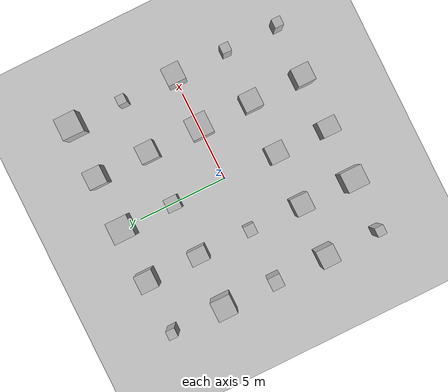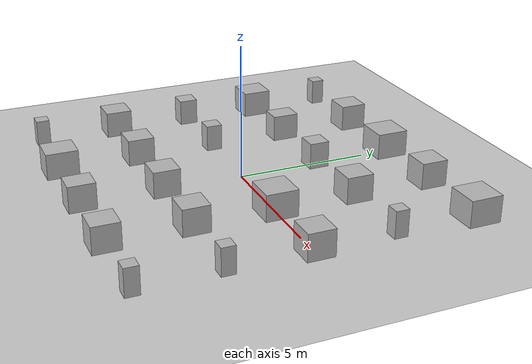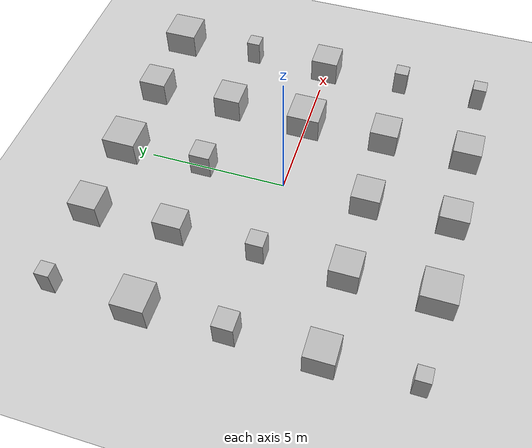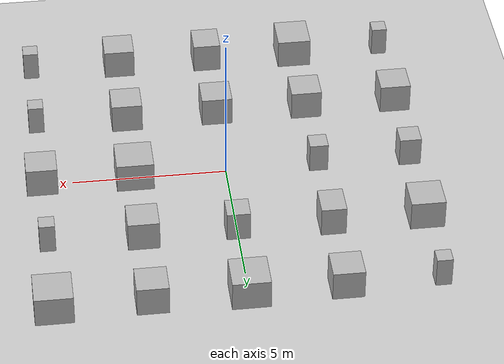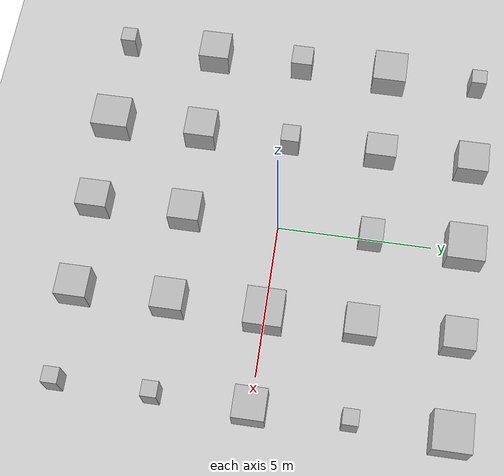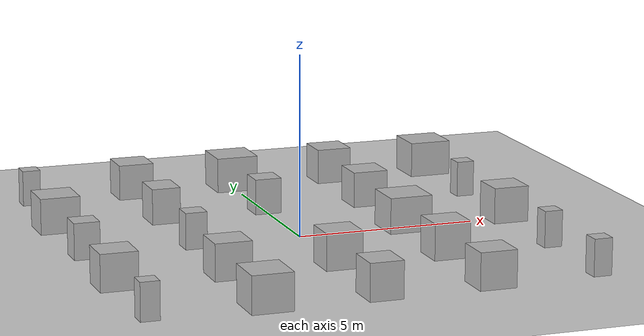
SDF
<?xml version="1.0" ?>
<sdf version="1.8">
  <world name="world_demo">
    <physics name="1ms" type="sdformat">
      <max_step_size>0.001</max_step_size>
      <real_time_factor>1.0</real_time_factor>
    </physics>
    <plugin
      filename="libignition-gazebo-physics-system.so"
      name="ignition::gazebo::systems::Physics">
    </plugin>
    <plugin
      filename="libignition-gazebo-user-commands-system.so"
      name="ignition::gazebo::systems::UserCommands">
    </plugin>
    <plugin
      filename="libignition-gazebo-scene-broadcaster-system.so"
      name="ignition::gazebo::systems::SceneBroadcaster">
    </plugin>
    <!--LiDAR -->
    <plugin
      filename="libignition-gazebo-sensors-system.so"
      name="ignition::gazebo::systems::Sensors">
      <render_engine>ogre2</render_engine>
    </plugin>
    <!--light-->
    <light type="directional" name="sun">
      <cast_shadows>true</cast_shadows>
      <pose>0 0 10 0 0 0</pose>
      <diffuse>0.8 0.8 0.8 1</diffuse>
      <specular>0.2 0.2 0.2 1</specular>
      <attenuation>
        <range>1000</range>
        <constant>0.9</constant>
        <linear>0.01</linear>
        <quadratic>0.001</quadratic>
      </attenuation>
      <direction>-0.5 0.1 -0.9</direction>
    </light>

    <model name="ground_plane">
            <static>true</static>
            <link name="link">
                <collision name="collision">
                <geometry>
                    <plane>
                    <normal>0 0 1</normal>
                    </plane>
                </geometry>
                </collision>
                <visual name="visual">
                <geometry>
                    <plane>
                    <normal>0 0 1</normal>
                    <size>100 100</size>
                    </plane>
                </geometry>
                <material>
                    <ambient>0.8 0.8 0.8 1</ambient>
                    <diffuse>0.8 0.8 0.8 1</diffuse>
                    <specular>0.8 0.8 0.8 1</specular>
                </material>
                </visual>
            </link>
    </model>

    <!-- Box at (1, 0) -->
        <!-- row 0 -->
    <model name="cube_0_0"><pose>-6.0 -6.0 0.5 0 0 0</pose><link name="link"><collision name="collision"><geometry><box><size>0.5 0.5 1</size></box></geometry></collision><visual name="visual"><geometry><box><size>0.5 0.5 1</size></box></geometry></visual></link></model>
    <model name="cube_0_1"><pose>-6.0 -3.0 0.5 0 0 0</pose><link name="link"><collision name="collision"><geometry><box><size>1 1 1</size></box></geometry></collision><visual name="visual"><geometry><box><size>1 1 1</size></box></geometry></visual></link></model>
    <model name="cube_0_2"><pose>-6.0 0.0 0.5 0 0 0</pose><link name="link"><collision name="collision"><geometry><box><size>0.7 0.7 1</size></box></geometry></collision><visual name="visual"><geometry><box><size>0.7 0.7 1</size></box></geometry></visual></link></model>
    <model name="cube_0_3"><pose>-6.0 3.0 0.5 0 0 0</pose><link name="link"><collision name="collision"><geometry><box><size>1.1 1.1 1</size></box></geometry></collision><visual name="visual"><geometry><box><size>1.1 1.1 1</size></box></geometry></visual></link></model>
    <model name="cube_0_4"><pose>-6.0 6.0 0.5 0 0 0</pose><link name="link"><collision name="collision"><geometry><box><size>0.5 0.5 1</size></box></geometry></collision><visual name="visual"><geometry><box><size>0.5 0.5 1</size></box></geometry></visual></link></model>

    <!-- row 1 (x = -3.0) -->
    <model name="cube_1_0"><pose>-3.0 -6.0 0.5 0 0 0</pose><link name="link"><collision name="collision"><geometry><box><size>1.1 1.2 1</size></box></geometry></collision><visual name="visual"><geometry><box><size>1.1 1.2 1</size></box></geometry></visual></link></model>
    <model name="cube_1_1"><pose>-3.0 -3.0 0.5 0 0 0</pose><link name="link"><collision name="collision"><geometry><box><size>1 1 1</size></box></geometry></collision><visual name="visual"><geometry><box><size>1 1 1</size></box></geometry></visual></link></model>
    <model name="cube_1_2"><pose>-3.0 0.0 0.5 0 0 0</pose><link name="link"><collision name="collision"><geometry><box><size>0.6 0.6 1</size></box></geometry></collision><visual name="visual"><geometry><box><size>0.6 0.6 1</size></box></geometry></visual></link></model>
    <model name="cube_1_3"><pose>-3.0 3.0 0.5 0 0 0</pose><link name="link"><collision name="collision"><geometry><box><size>0.8 1 1</size></box></geometry></collision><visual name="visual"><geometry><box><size>0.8 1 1</size></box></geometry></visual></link></model>
    <model name="cube_1_4"><pose>-3.0 6.0 0.5 0 0 0</pose><link name="link"><collision name="collision"><geometry><box><size>1 1 1</size></box></geometry></collision><visual name="visual"><geometry><box><size>1 1 1</size></box></geometry></visual></link></model>

    <!-- row 2 (x = 0.0) -->
    <model name="cube_2_0"><pose>0.0 -6.0 0.5 0 0 0</pose><link name="link"><collision name="collision"><geometry><box><size>0.9 1 1</size></box></geometry></collision><visual name="visual"><geometry><box><size>0.9 1 1</size></box></geometry></visual></link></model>
    <model name="cube_2_1"><pose>0.0 -3.0 0.5 0 0 0</pose><link name="link"><collision name="collision"><geometry><box><size>1 1 1</size></box></geometry></collision><visual name="visual"><geometry><box><size>1 1 1</size></box></geometry></visual></link></model>
    <!-- cube_2_2 intentionally commented out -->
    <model name="cube_2_3"><pose>0.0 3.0 0.5 0 0 0</pose><link name="link"><collision name="collision"><geometry><box><size>0.75 0.75 1</size></box></geometry></collision><visual name="visual"><geometry><box><size>0.75 0.75 1</size></box></geometry></visual></link></model>
    <model name="cube_2_4"><pose>0.0 6.0 0.5 0 0 0</pose><link name="link"><collision name="collision"><geometry><box><size>1.2 1.2 1</size></box></geometry></collision><visual name="visual"><geometry><box><size>1.2 1.2 1</size></box></geometry></visual></link></model>

    <!-- row 3 (x = 3.0) -->
    <model name="cube_3_0"><pose>3.0 -6.0 0.5 0 0 0</pose><link name="link"><collision name="collision"><geometry><box><size>1 1 1</size></box></geometry></collision><visual name="visual"><geometry><box><size>1 1 1</size></box></geometry></visual></link></model>
    <model name="cube_3_1"><pose>3.0 -3.0 0.5 0 0 0</pose><link name="link"><collision name="collision"><geometry><box><size>1 1 1</size></box></geometry></collision><visual name="visual"><geometry><box><size>1 1 1</size></box></geometry></visual></link></model>
    <model name="cube_3_2"><pose>3.0 0.0 0.5 0 0 0</pose><link name="link"><collision name="collision"><geometry><box><size>1.2 1.2 1</size></box></geometry></collision><visual name="visual"><geometry><box><size>1.2 1.2 1</size></box></geometry></visual></link></model>
    <model name="cube_3_3"><pose>3.0 3.0 0.5 0 0 0</pose><link name="link"><collision name="collision"><geometry><box><size>1 1 1</size></box></geometry></collision><visual name="visual"><geometry><box><size>1 1 1</size></box></geometry></visual></link></model>
    <model name="cube_3_4"><pose>3.0 6.0 0.5 0 0 0</pose><link name="link"><collision name="collision"><geometry><box><size>1 1 1</size></box></geometry></collision><visual name="visual"><geometry><box><size>1 1 1</size></box></geometry></visual></link></model>

    <!-- row 4 (x = 6.0) -->
    <model name="cube_4_0"><pose>6.0 -6.0 0.5 0 0 0</pose><link name="link"><collision name="collision"><geometry><box><size>0.5 0.5 1</size></box></geometry></collision><visual name="visual"><geometry><box><size>0.5 0.5 1</size></box></geometry></visual></link></model>
    <model name="cube_4_1"><pose>6.0 -3.0 0.5 0 0 0</pose><link name="link"><collision name="collision"><geometry><box><size>0.5 0.5 1</size></box></geometry></collision><visual name="visual"><geometry><box><size>0.5 0.5 1</size></box></geometry></visual></link></model>
    <model name="cube_4_2"><pose>6.0 0.0 0.5 0 0 0</pose><link name="link"><collision name="collision"><geometry><box><size>1 1 1</size></box></geometry></collision><visual name="visual"><geometry><box><size>1 1 1</size></box></geometry></visual></link></model>
    <model name="cube_4_3"><pose>6.0 3.0 0.5 0 0 0</pose><link name="link"><collision name="collision"><geometry><box><size>0.5 0.5 1</size></box></geometry></collision><visual name="visual"><geometry><box><size>0.5 0.5 1</size></box></geometry></visual></link></model>
    <model name="cube_4_4"><pose>6.0 6.0 0.5 0 0 0</pose><link name="link"><collision name="collision"><geometry><box><size>1.2 1.2 1</size></box></geometry></collision><visual name="visual"><geometry><box><size>1.2 1.2 1</size></box></geometry></visual></link></model>

    </world>
</sdf>
